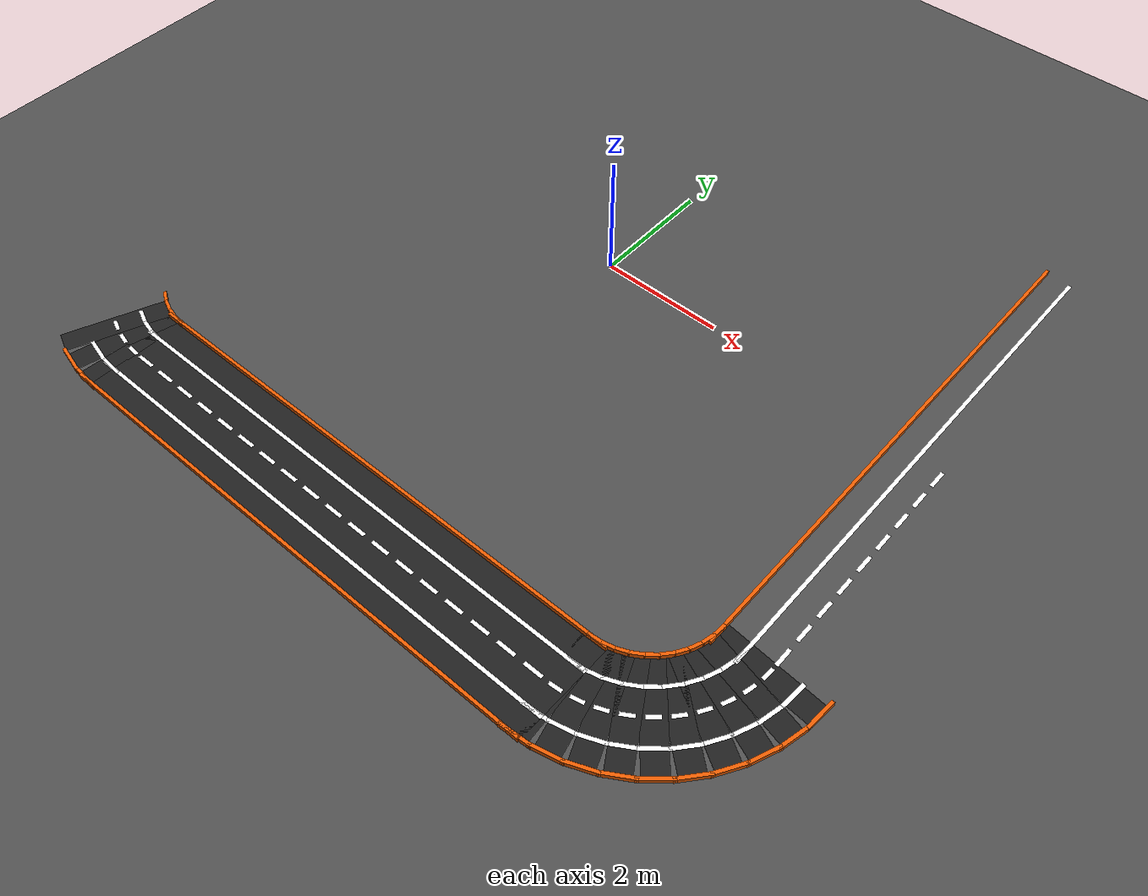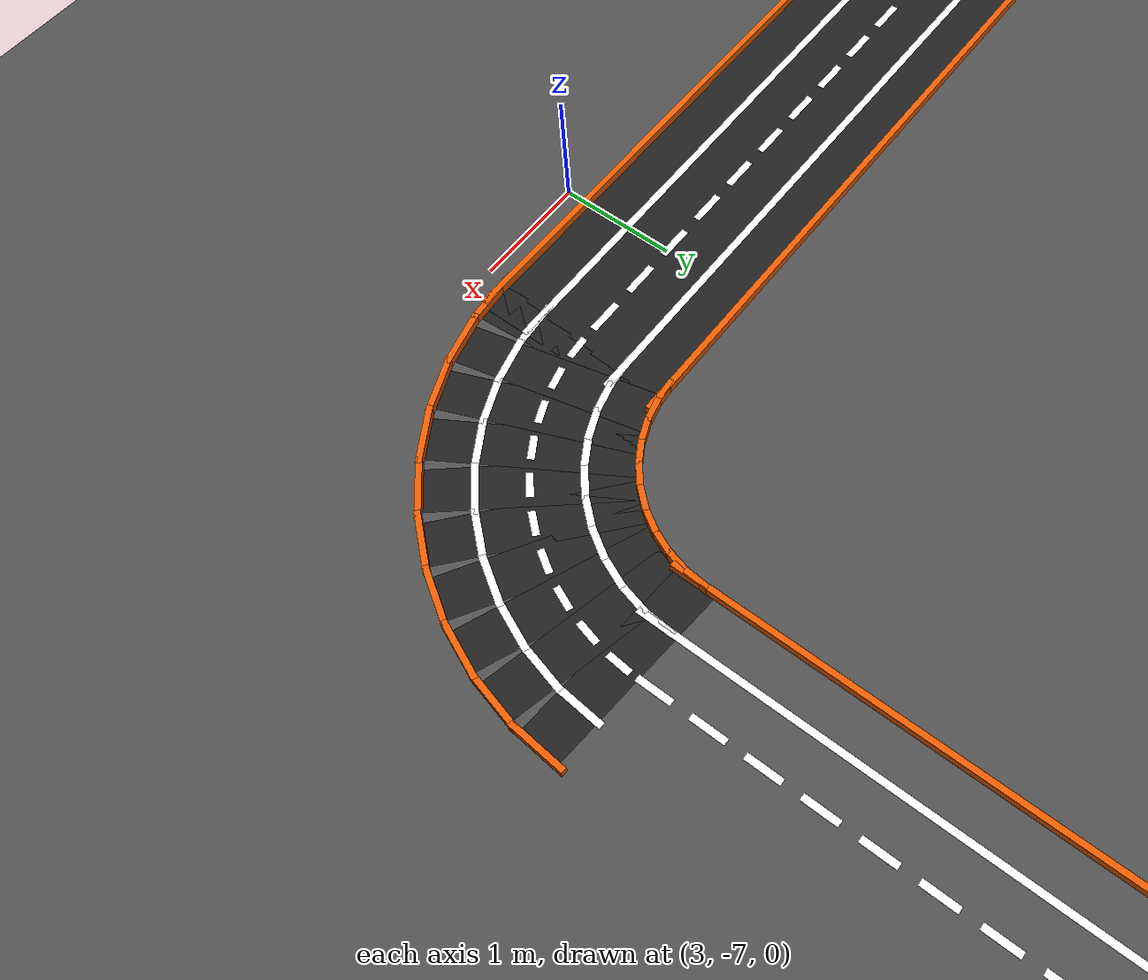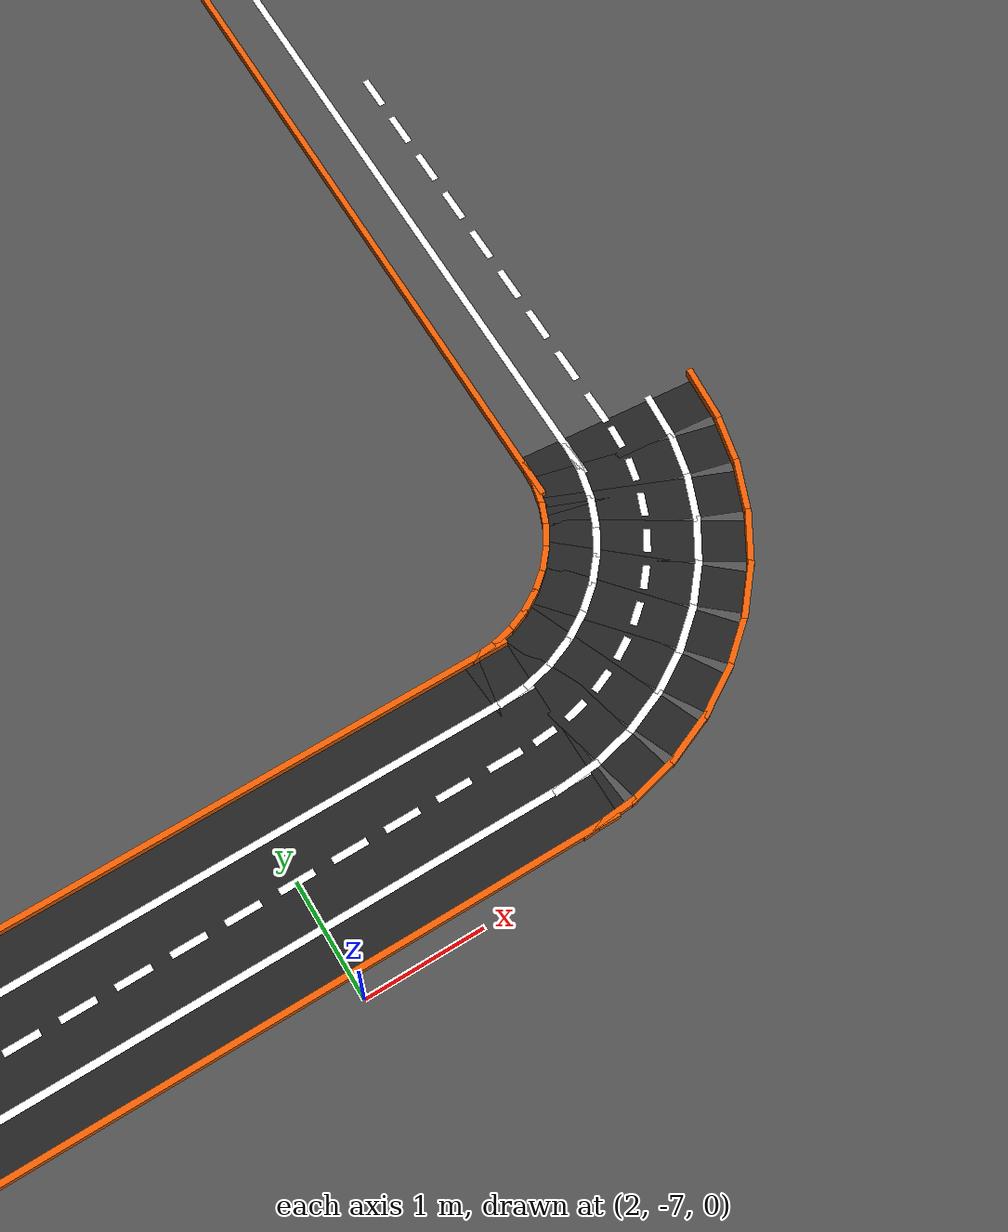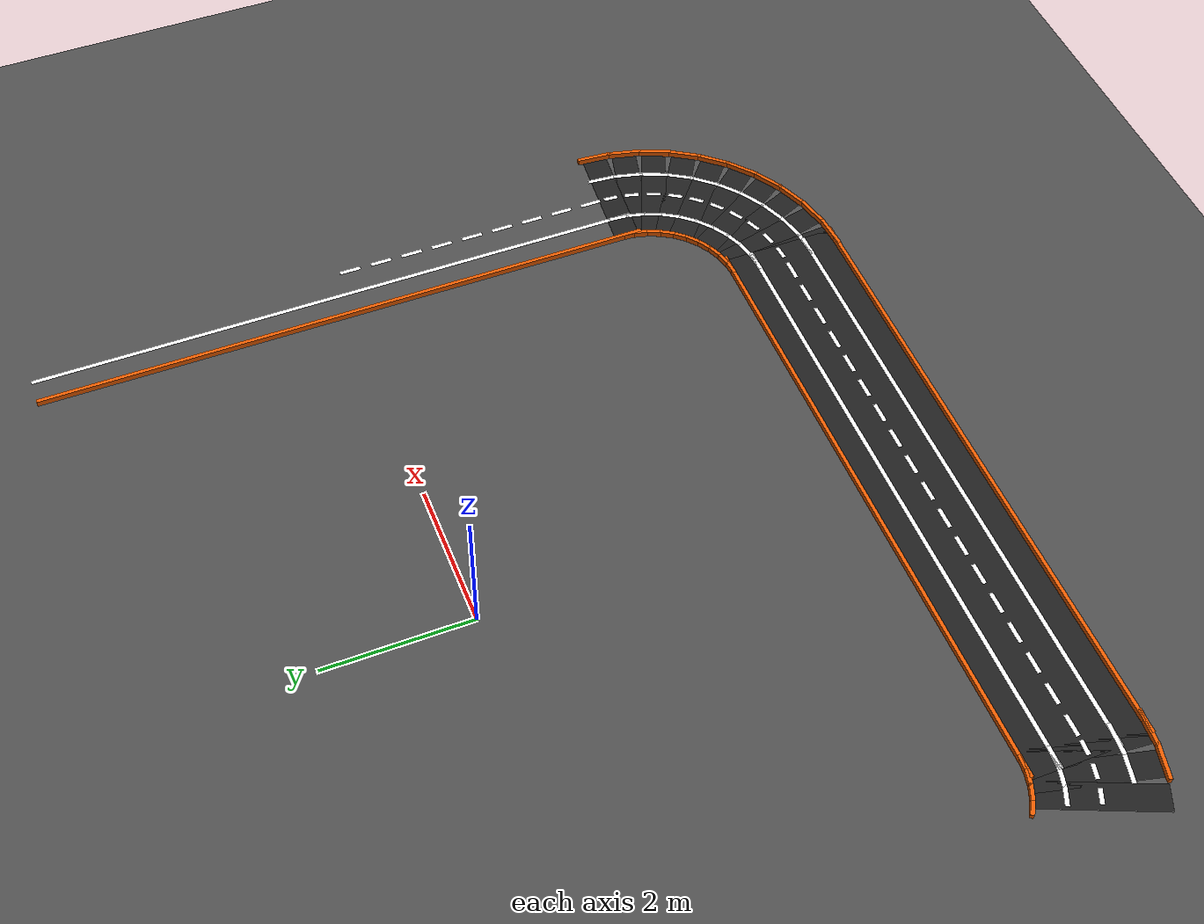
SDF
<sdf version="1.6">
 <world name="qcar_oval">
  <model name="ground_plane">
   <static>true</static>
   <link name="link">
    <collision name="collision">
     <geometry><plane><normal>0 0 1</normal><size>200 200</size></plane></geometry>
    </collision>
    <visual name="visual">
     <geometry><plane><normal>0 0 1</normal><size>200 200</size></plane></geometry>
     <material><ambient>0.3 0.3 0.3 1</ambient><diffuse>0.3 0.3 0.3 1</diffuse></material>
    </visual>
   </link>
  </model>
  <model name="m0">
   <static>true</static>
   <pose>0.0000 -6.0000 0.00100 0 0 0.00000</pose>
   <link name="l">
    <visual name="v">
     <geometry><box><size>8.6000 1.6000 0.0010</size></box></geometry>
     <material><ambient>0.12 0.12 0.12 1</ambient><diffuse>0.12 0.12 0.12 1</diffuse></material>
    </visual>
   </link>
  </model>
  <model name="m1">
   <static>true</static>
   <pose>0.0000 -5.2000 0.04000 0 0 0.00000</pose>
   <link name="l">
    <visual name="v">
     <geometry><box><size>8.6000 0.0500 0.0800</size></box></geometry>
     <material><ambient>0.9 0.35 0.0 1</ambient><diffuse>0.9 0.35 0.0 1</diffuse></material>
    </visual>
   </link>
  </model>
  <model name="m2">
   <static>true</static>
   <pose>0.0000 -6.8000 0.04000 0 0 0.00000</pose>
   <link name="l">
    <visual name="v">
     <geometry><box><size>8.6000 0.0500 0.0800</size></box></geometry>
     <material><ambient>0.9 0.35 0.0 1</ambient><diffuse>0.9 0.35 0.0 1</diffuse></material>
    </visual>
   </link>
  </model>
  <model name="m3">
   <static>true</static>
   <pose>0.0000 -5.6000 0.00200 0 0 0.00000</pose>
   <link name="l">
    <visual name="v">
     <geometry><box><size>8.6000 0.0600 0.0010</size></box></geometry>
     <material><ambient>1 1 1 1</ambient><diffuse>1 1 1 1</diffuse></material>
    </visual>
   </link>
  </model>
  <model name="m4">
   <static>true</static>
   <pose>0.0000 -6.4000 0.00200 0 0 0.00000</pose>
   <link name="l">
    <visual name="v">
     <geometry><box><size>8.6000 0.0600 0.0010</size></box></geometry>
     <material><ambient>1 1 1 1</ambient><diffuse>1 1 1 1</diffuse></material>
    </visual>
   </link>
  </model>
  <model name="m5">
   <static>true</static>
   <pose>-3.8500 -6.0000 0.00200 0 0 0.00000</pose>
   <link name="l">
    <visual name="v">
     <geometry><box><size>0.3000 0.0600 0.0010</size></box></geometry>
     <material><ambient>1 1 1 1</ambient><diffuse>1 1 1 1</diffuse></material>
    </visual>
   </link>
  </model>
  <model name="m6">
   <static>true</static>
   <pose>-3.4000 -6.0000 0.00200 0 0 0.00000</pose>
   <link name="l">
    <visual name="v">
     <geometry><box><size>0.3000 0.0600 0.0010</size></box></geometry>
     <material><ambient>1 1 1 1</ambient><diffuse>1 1 1 1</diffuse></material>
    </visual>
   </link>
  </model>
  <model name="m7">
   <static>true</static>
   <pose>-2.9500 -6.0000 0.00200 0 0 0.00000</pose>
   <link name="l">
    <visual name="v">
     <geometry><box><size>0.3000 0.0600 0.0010</size></box></geometry>
     <material><ambient>1 1 1 1</ambient><diffuse>1 1 1 1</diffuse></material>
    </visual>
   </link>
  </model>
  <model name="m8">
   <static>true</static>
   <pose>-2.5000 -6.0000 0.00200 0 0 0.00000</pose>
   <link name="l">
    <visual name="v">
     <geometry><box><size>0.3000 0.0600 0.0010</size></box></geometry>
     <material><ambient>1 1 1 1</ambient><diffuse>1 1 1 1</diffuse></material>
    </visual>
   </link>
  </model>
  <model name="m9">
   <static>true</static>
   <pose>-2.0500 -6.0000 0.00200 0 0 0.00000</pose>
   <link name="l">
    <visual name="v">
     <geometry><box><size>0.3000 0.0600 0.0010</size></box></geometry>
     <material><ambient>1 1 1 1</ambient><diffuse>1 1 1 1</diffuse></material>
    </visual>
   </link>
  </model>
  <model name="m10">
   <static>true</static>
   <pose>-1.6000 -6.0000 0.00200 0 0 0.00000</pose>
   <link name="l">
    <visual name="v">
     <geometry><box><size>0.3000 0.0600 0.0010</size></box></geometry>
     <material><ambient>1 1 1 1</ambient><diffuse>1 1 1 1</diffuse></material>
    </visual>
   </link>
  </model>
  <model name="m11">
   <static>true</static>
   <pose>-1.1500 -6.0000 0.00200 0 0 0.00000</pose>
   <link name="l">
    <visual name="v">
     <geometry><box><size>0.3000 0.0600 0.0010</size></box></geometry>
     <material><ambient>1 1 1 1</ambient><diffuse>1 1 1 1</diffuse></material>
    </visual>
   </link>
  </model>
  <model name="m12">
   <static>true</static>
   <pose>-0.7000 -6.0000 0.00200 0 0 0.00000</pose>
   <link name="l">
    <visual name="v">
     <geometry><box><size>0.3000 0.0600 0.0010</size></box></geometry>
     <material><ambient>1 1 1 1</ambient><diffuse>1 1 1 1</diffuse></material>
    </visual>
   </link>
  </model>
  <model name="m13">
   <static>true</static>
   <pose>-0.2500 -6.0000 0.00200 0 0 0.00000</pose>
   <link name="l">
    <visual name="v">
     <geometry><box><size>0.3000 0.0600 0.0010</size></box></geometry>
     <material><ambient>1 1 1 1</ambient><diffuse>1 1 1 1</diffuse></material>
    </visual>
   </link>
  </model>
  <model name="m14">
   <static>true</static>
   <pose>0.2000 -6.0000 0.00200 0 0 0.00000</pose>
   <link name="l">
    <visual name="v">
     <geometry><box><size>0.3000 0.0600 0.0010</size></box></geometry>
     <material><ambient>1 1 1 1</ambient><diffuse>1 1 1 1</diffuse></material>
    </visual>
   </link>
  </model>
  <model name="m15">
   <static>true</static>
   <pose>0.6500 -6.0000 0.00200 0 0 0.00000</pose>
   <link name="l">
    <visual name="v">
     <geometry><box><size>0.3000 0.0600 0.0010</size></box></geometry>
     <material><ambient>1 1 1 1</ambient><diffuse>1 1 1 1</diffuse></material>
    </visual>
   </link>
  </model>
  <model name="m16">
   <static>true</static>
   <pose>1.1000 -6.0000 0.00200 0 0 0.00000</pose>
   <link name="l">
    <visual name="v">
     <geometry><box><size>0.3000 0.0600 0.0010</size></box></geometry>
     <material><ambient>1 1 1 1</ambient><diffuse>1 1 1 1</diffuse></material>
    </visual>
   </link>
  </model>
  <model name="m17">
   <static>true</static>
   <pose>1.5500 -6.0000 0.00200 0 0 0.00000</pose>
   <link name="l">
    <visual name="v">
     <geometry><box><size>0.3000 0.0600 0.0010</size></box></geometry>
     <material><ambient>1 1 1 1</ambient><diffuse>1 1 1 1</diffuse></material>
    </visual>
   </link>
  </model>
  <model name="m18">
   <static>true</static>
   <pose>2.0000 -6.0000 0.00200 0 0 0.00000</pose>
   <link name="l">
    <visual name="v">
     <geometry><box><size>0.3000 0.0600 0.0010</size></box></geometry>
     <material><ambient>1 1 1 1</ambient><diffuse>1 1 1 1</diffuse></material>
    </visual>
   </link>
  </model>
  <model name="m19">
   <static>true</static>
   <pose>2.4500 -6.0000 0.00200 0 0 0.00000</pose>
   <link name="l">
    <visual name="v">
     <geometry><box><size>0.3000 0.0600 0.0010</size></box></geometry>
     <material><ambient>1 1 1 1</ambient><diffuse>1 1 1 1</diffuse></material>
    </visual>
   </link>
  </model>
  <model name="m20">
   <static>true</static>
   <pose>2.9000 -6.0000 0.00200 0 0 0.00000</pose>
   <link name="l">
    <visual name="v">
     <geometry><box><size>0.3000 0.0600 0.0010</size></box></geometry>
     <material><ambient>1 1 1 1</ambient><diffuse>1 1 1 1</diffuse></material>
    </visual>
   </link>
  </model>
  <model name="m21">
   <static>true</static>
   <pose>3.3500 -6.0000 0.00200 0 0 0.00000</pose>
   <link name="l">
    <visual name="v">
     <geometry><box><size>0.3000 0.0600 0.0010</size></box></geometry>
     <material><ambient>1 1 1 1</ambient><diffuse>1 1 1 1</diffuse></material>
    </visual>
   </link>
  </model>
  <model name="m22">
   <static>true</static>
   <pose>3.8000 -6.0000 0.00200 0 0 0.00000</pose>
   <link name="l">
    <visual name="v">
     <geometry><box><size>0.3000 0.0600 0.0010</size></box></geometry>
     <material><ambient>1 1 1 1</ambient><diffuse>1 1 1 1</diffuse></material>
    </visual>
   </link>
  </model>
  <model name="m47">
   <static>true</static>
   <pose>5.2000 0.0000 0.04000 0 0 0.00000</pose>
   <link name="l">
    <visual name="v">
     <geometry><box><size>0.0500 8.6000 0.0800</size></box></geometry>
     <material><ambient>0.9 0.35 0.0 1</ambient><diffuse>0.9 0.35 0.0 1</diffuse></material>
    </visual>
   </link>
  </model>
  <model name="m49">
   <static>true</static>
   <pose>5.6000 0.0000 0.00200 0 0 0.00000</pose>
   <link name="l">
    <visual name="v">
     <geometry><box><size>0.0600 8.6000 0.0010</size></box></geometry>
     <material><ambient>1 1 1 1</ambient><diffuse>1 1 1 1</diffuse></material>
    </visual>
   </link>
  </model>
  <model name="m51">
   <static>true</static>
   <pose>6.0000 -3.8500 0.00200 0 0 0.00000</pose>
   <link name="l">
    <visual name="v">
     <geometry><box><size>0.0600 0.3000 0.0010</size></box></geometry>
     <material><ambient>1 1 1 1</ambient><diffuse>1 1 1 1</diffuse></material>
    </visual>
   </link>
  </model>
  <model name="m52">
   <static>true</static>
   <pose>6.0000 -3.4000 0.00200 0 0 0.00000</pose>
   <link name="l">
    <visual name="v">
     <geometry><box><size>0.0600 0.3000 0.0010</size></box></geometry>
     <material><ambient>1 1 1 1</ambient><diffuse>1 1 1 1</diffuse></material>
    </visual>
   </link>
  </model>
  <model name="m53">
   <static>true</static>
   <pose>6.0000 -2.9500 0.00200 0 0 0.00000</pose>
   <link name="l">
    <visual name="v">
     <geometry><box><size>0.0600 0.3000 0.0010</size></box></geometry>
     <material><ambient>1 1 1 1</ambient><diffuse>1 1 1 1</diffuse></material>
    </visual>
   </link>
  </model>
  <model name="m54">
   <static>true</static>
   <pose>6.0000 -2.5000 0.00200 0 0 0.00000</pose>
   <link name="l">
    <visual name="v">
     <geometry><box><size>0.0600 0.3000 0.0010</size></box></geometry>
     <material><ambient>1 1 1 1</ambient><diffuse>1 1 1 1</diffuse></material>
    </visual>
   </link>
  </model>
  <model name="m55">
   <static>true</static>
   <pose>6.0000 -2.0500 0.00200 0 0 0.00000</pose>
   <link name="l">
    <visual name="v">
     <geometry><box><size>0.0600 0.3000 0.0010</size></box></geometry>
     <material><ambient>1 1 1 1</ambient><diffuse>1 1 1 1</diffuse></material>
    </visual>
   </link>
  </model>
  <model name="m56">
   <static>true</static>
   <pose>6.0000 -1.6000 0.00200 0 0 0.00000</pose>
   <link name="l">
    <visual name="v">
     <geometry><box><size>0.0600 0.3000 0.0010</size></box></geometry>
     <material><ambient>1 1 1 1</ambient><diffuse>1 1 1 1</diffuse></material>
    </visual>
   </link>
  </model>
  <model name="m57">
   <static>true</static>
   <pose>6.0000 -1.1500 0.00200 0 0 0.00000</pose>
   <link name="l">
    <visual name="v">
     <geometry><box><size>0.0600 0.3000 0.0010</size></box></geometry>
     <material><ambient>1 1 1 1</ambient><diffuse>1 1 1 1</diffuse></material>
    </visual>
   </link>
  </model>
  <model name="m58">
   <static>true</static>
   <pose>6.0000 -0.7000 0.00200 0 0 0.00000</pose>
   <link name="l">
    <visual name="v">
     <geometry><box><size>0.0600 0.3000 0.0010</size></box></geometry>
     <material><ambient>1 1 1 1</ambient><diffuse>1 1 1 1</diffuse></material>
    </visual>
   </link>
  </model>
  <model name="m59">
   <static>true</static>
   <pose>6.0000 -0.2500 0.00200 0 0 0.00000</pose>
   <link name="l">
    <visual name="v">
     <geometry><box><size>0.0600 0.3000 0.0010</size></box></geometry>
     <material><ambient>1 1 1 1</ambient><diffuse>1 1 1 1</diffuse></material>
    </visual>
   </link>
  </model>
  <model name="m92">
   <static>true</static>
   <pose>4.1569 -5.9938 0.00100 0 0 0.07854</pose>
   <link name="l">
    <visual name="v">
     <geometry><box><size>0.3519 1.6000 0.0010</size></box></geometry>
     <material><ambient>0.12 0.12 0.12 1</ambient><diffuse>0.12 0.12 0.12 1</diffuse></material>
    </visual>
   </link>
  </model>
  <model name="m93">
   <static>true</static>
   <pose>4.0942 -5.1963 0.04000 0 0 0.07854</pose>
   <link name="l">
    <visual name="v">
     <geometry><box><size>0.2111 0.0500 0.0800</size></box></geometry>
     <material><ambient>0.9 0.35 0.0 1</ambient><diffuse>0.9 0.35 0.0 1</diffuse></material>
    </visual>
   </link>
  </model>
  <model name="m94">
   <static>true</static>
   <pose>4.2197 -6.7914 0.04000 0 0 0.07854</pose>
   <link name="l">
    <visual name="v">
     <geometry><box><size>0.4926 0.0500 0.0800</size></box></geometry>
     <material><ambient>0.9 0.35 0.0 1</ambient><diffuse>0.9 0.35 0.0 1</diffuse></material>
    </visual>
   </link>
  </model>
  <model name="m95">
   <static>true</static>
   <pose>4.1255 -5.5951 0.00200 0 0 0.07854</pose>
   <link name="l">
    <visual name="v">
     <geometry><box><size>0.2815 0.0600 0.0010</size></box></geometry>
     <material><ambient>1 1 1 1</ambient><diffuse>1 1 1 1</diffuse></material>
    </visual>
   </link>
  </model>
  <model name="m96">
   <static>true</static>
   <pose>4.1883 -6.3926 0.00200 0 0 0.07854</pose>
   <link name="l">
    <visual name="v">
     <geometry><box><size>0.4222 0.0600 0.0010</size></box></geometry>
     <material><ambient>1 1 1 1</ambient><diffuse>1 1 1 1</diffuse></material>
    </visual>
   </link>
  </model>
  <model name="m97">
   <static>true</static>
   <pose>4.1569 -5.9938 0.00200 0 0 0.07854</pose>
   <link name="l">
    <visual name="v">
     <geometry><box><size>0.2042 0.0600 0.0010</size></box></geometry>
     <material><ambient>1 1 1 1</ambient><diffuse>1 1 1 1</diffuse></material>
    </visual>
   </link>
  </model>
  <model name="m98">
   <static>true</static>
   <pose>4.4669 -5.9447 0.00100 0 0 0.23562</pose>
   <link name="l">
    <visual name="v">
     <geometry><box><size>0.3519 1.6000 0.0010</size></box></geometry>
     <material><ambient>0.12 0.12 0.12 1</ambient><diffuse>0.12 0.12 0.12 1</diffuse></material>
    </visual>
   </link>
  </model>
  <model name="m99">
   <static>true</static>
   <pose>4.2801 -5.1668 0.04000 0 0 0.23562</pose>
   <link name="l">
    <visual name="v">
     <geometry><box><size>0.2111 0.0500 0.0800</size></box></geometry>
     <material><ambient>0.9 0.35 0.0 1</ambient><diffuse>0.9 0.35 0.0 1</diffuse></material>
    </visual>
   </link>
  </model>
  <model name="m100">
   <static>true</static>
   <pose>4.6536 -6.7226 0.04000 0 0 0.23562</pose>
   <link name="l">
    <visual name="v">
     <geometry><box><size>0.4926 0.0500 0.0800</size></box></geometry>
     <material><ambient>0.9 0.35 0.0 1</ambient><diffuse>0.9 0.35 0.0 1</diffuse></material>
    </visual>
   </link>
  </model>
  <model name="m101">
   <static>true</static>
   <pose>4.3735 -5.5558 0.00200 0 0 0.23562</pose>
   <link name="l">
    <visual name="v">
     <geometry><box><size>0.2815 0.0600 0.0010</size></box></geometry>
     <material><ambient>1 1 1 1</ambient><diffuse>1 1 1 1</diffuse></material>
    </visual>
   </link>
  </model>
  <model name="m102">
   <static>true</static>
   <pose>4.5603 -6.3337 0.00200 0 0 0.23562</pose>
   <link name="l">
    <visual name="v">
     <geometry><box><size>0.4222 0.0600 0.0010</size></box></geometry>
     <material><ambient>1 1 1 1</ambient><diffuse>1 1 1 1</diffuse></material>
    </visual>
   </link>
  </model>
  <model name="m103">
   <static>true</static>
   <pose>4.4669 -5.9447 0.00200 0 0 0.23562</pose>
   <link name="l">
    <visual name="v">
     <geometry><box><size>0.2042 0.0600 0.0010</size></box></geometry>
     <material><ambient>1 1 1 1</ambient><diffuse>1 1 1 1</diffuse></material>
    </visual>
   </link>
  </model>
  <model name="m104">
   <static>true</static>
   <pose>4.7654 -5.8478 0.00100 0 0 0.39270</pose>
   <link name="l">
    <visual name="v">
     <geometry><box><size>0.3519 1.6000 0.0010</size></box></geometry>
     <material><ambient>0.12 0.12 0.12 1</ambient><diffuse>0.12 0.12 0.12 1</diffuse></material>
    </visual>
   </link>
  </model>
  <model name="m105">
   <static>true</static>
   <pose>4.4592 -5.1087 0.04000 0 0 0.39270</pose>
   <link name="l">
    <visual name="v">
     <geometry><box><size>0.2111 0.0500 0.0800</size></box></geometry>
     <material><ambient>0.9 0.35 0.0 1</ambient><diffuse>0.9 0.35 0.0 1</diffuse></material>
    </visual>
   </link>
  </model>
  <model name="m106">
   <static>true</static>
   <pose>5.0715 -6.5869 0.04000 0 0 0.39270</pose>
   <link name="l">
    <visual name="v">
     <geometry><box><size>0.4926 0.0500 0.0800</size></box></geometry>
     <material><ambient>0.9 0.35 0.0 1</ambient><diffuse>0.9 0.35 0.0 1</diffuse></material>
    </visual>
   </link>
  </model>
  <model name="m107">
   <static>true</static>
   <pose>4.6123 -5.4782 0.00200 0 0 0.39270</pose>
   <link name="l">
    <visual name="v">
     <geometry><box><size>0.2815 0.0600 0.0010</size></box></geometry>
     <material><ambient>1 1 1 1</ambient><diffuse>1 1 1 1</diffuse></material>
    </visual>
   </link>
  </model>
  <model name="m108">
   <static>true</static>
   <pose>4.9184 -6.2173 0.00200 0 0 0.39270</pose>
   <link name="l">
    <visual name="v">
     <geometry><box><size>0.4222 0.0600 0.0010</size></box></geometry>
     <material><ambient>1 1 1 1</ambient><diffuse>1 1 1 1</diffuse></material>
    </visual>
   </link>
  </model>
  <model name="m109">
   <static>true</static>
   <pose>4.7654 -5.8478 0.00200 0 0 0.39270</pose>
   <link name="l">
    <visual name="v">
     <geometry><box><size>0.2042 0.0600 0.0010</size></box></geometry>
     <material><ambient>1 1 1 1</ambient><diffuse>1 1 1 1</diffuse></material>
    </visual>
   </link>
  </model>
  <model name="m110">
   <static>true</static>
   <pose>5.0450 -5.7053 0.00100 0 0 0.54978</pose>
   <link name="l">
    <visual name="v">
     <geometry><box><size>0.3519 1.6000 0.0010</size></box></geometry>
     <material><ambient>0.12 0.12 0.12 1</ambient><diffuse>0.12 0.12 0.12 1</diffuse></material>
    </visual>
   </link>
  </model>
  <model name="m111">
   <static>true</static>
   <pose>4.6270 -5.0232 0.04000 0 0 0.54978</pose>
   <link name="l">
    <visual name="v">
     <geometry><box><size>0.2111 0.0500 0.0800</size></box></geometry>
     <material><ambient>0.9 0.35 0.0 1</ambient><diffuse>0.9 0.35 0.0 1</diffuse></material>
    </visual>
   </link>
  </model>
  <model name="m112">
   <static>true</static>
   <pose>5.4630 -6.3874 0.04000 0 0 0.54978</pose>
   <link name="l">
    <visual name="v">
     <geometry><box><size>0.4926 0.0500 0.0800</size></box></geometry>
     <material><ambient>0.9 0.35 0.0 1</ambient><diffuse>0.9 0.35 0.0 1</diffuse></material>
    </visual>
   </link>
  </model>
  <model name="m113">
   <static>true</static>
   <pose>4.8360 -5.3642 0.00200 0 0 0.54978</pose>
   <link name="l">
    <visual name="v">
     <geometry><box><size>0.2815 0.0600 0.0010</size></box></geometry>
     <material><ambient>1 1 1 1</ambient><diffuse>1 1 1 1</diffuse></material>
    </visual>
   </link>
  </model>
  <model name="m114">
   <static>true</static>
   <pose>5.2540 -6.0463 0.00200 0 0 0.54978</pose>
   <link name="l">
    <visual name="v">
     <geometry><box><size>0.4222 0.0600 0.0010</size></box></geometry>
     <material><ambient>1 1 1 1</ambient><diffuse>1 1 1 1</diffuse></material>
    </visual>
   </link>
  </model>
  <model name="m115">
   <static>true</static>
   <pose>5.0450 -5.7053 0.00200 0 0 0.54978</pose>
   <link name="l">
    <visual name="v">
     <geometry><box><size>0.2042 0.0600 0.0010</size></box></geometry>
     <material><ambient>1 1 1 1</ambient><diffuse>1 1 1 1</diffuse></material>
    </visual>
   </link>
  </model>
  <model name="m116">
   <static>true</static>
   <pose>5.2989 -5.5208 0.00100 0 0 0.70686</pose>
   <link name="l">
    <visual name="v">
     <geometry><box><size>0.3519 1.6000 0.0010</size></box></geometry>
     <material><ambient>0.12 0.12 0.12 1</ambient><diffuse>0.12 0.12 0.12 1</diffuse></material>
    </visual>
   </link>
  </model>
  <model name="m117">
   <static>true</static>
   <pose>4.7793 -4.9125 0.04000 0 0 0.70686</pose>
   <link name="l">
    <visual name="v">
     <geometry><box><size>0.2111 0.0500 0.0800</size></box></geometry>
     <material><ambient>0.9 0.35 0.0 1</ambient><diffuse>0.9 0.35 0.0 1</diffuse></material>
    </visual>
   </link>
  </model>
  <model name="m118">
   <static>true</static>
   <pose>5.8185 -6.1291 0.04000 0 0 0.70686</pose>
   <link name="l">
    <visual name="v">
     <geometry><box><size>0.4926 0.0500 0.0800</size></box></geometry>
     <material><ambient>0.9 0.35 0.0 1</ambient><diffuse>0.9 0.35 0.0 1</diffuse></material>
    </visual>
   </link>
  </model>
  <model name="m119">
   <static>true</static>
   <pose>5.0391 -5.2166 0.00200 0 0 0.70686</pose>
   <link name="l">
    <visual name="v">
     <geometry><box><size>0.2815 0.0600 0.0010</size></box></geometry>
     <material><ambient>1 1 1 1</ambient><diffuse>1 1 1 1</diffuse></material>
    </visual>
   </link>
  </model>
  <model name="m120">
   <static>true</static>
   <pose>5.5587 -5.8250 0.00200 0 0 0.70686</pose>
   <link name="l">
    <visual name="v">
     <geometry><box><size>0.4222 0.0600 0.0010</size></box></geometry>
     <material><ambient>1 1 1 1</ambient><diffuse>1 1 1 1</diffuse></material>
    </visual>
   </link>
  </model>
  <model name="m121">
   <static>true</static>
   <pose>5.2989 -5.5208 0.00200 0 0 0.70686</pose>
   <link name="l">
    <visual name="v">
     <geometry><box><size>0.2042 0.0600 0.0010</size></box></geometry>
     <material><ambient>1 1 1 1</ambient><diffuse>1 1 1 1</diffuse></material>
    </visual>
   </link>
  </model>
  <model name="m122">
   <static>true</static>
   <pose>5.5208 -5.2989 0.00100 0 0 0.86394</pose>
   <link name="l">
    <visual name="v">
     <geometry><box><size>0.3519 1.6000 0.0010</size></box></geometry>
     <material><ambient>0.12 0.12 0.12 1</ambient><diffuse>0.12 0.12 0.12 1</diffuse></material>
    </visual>
   </link>
  </model>
  <model name="m123">
   <static>true</static>
   <pose>4.9125 -4.7793 0.04000 0 0 0.86394</pose>
   <link name="l">
    <visual name="v">
     <geometry><box><size>0.2111 0.0500 0.0800</size></box></geometry>
     <material><ambient>0.9 0.35 0.0 1</ambient><diffuse>0.9 0.35 0.0 1</diffuse></material>
    </visual>
   </link>
  </model>
  <model name="m124">
   <static>true</static>
   <pose>6.1291 -5.8185 0.04000 0 0 0.86394</pose>
   <link name="l">
    <visual name="v">
     <geometry><box><size>0.4926 0.0500 0.0800</size></box></geometry>
     <material><ambient>0.9 0.35 0.0 1</ambient><diffuse>0.9 0.35 0.0 1</diffuse></material>
    </visual>
   </link>
  </model>
  <model name="m125">
   <static>true</static>
   <pose>5.2166 -5.0391 0.00200 0 0 0.86394</pose>
   <link name="l">
    <visual name="v">
     <geometry><box><size>0.2815 0.0600 0.0010</size></box></geometry>
     <material><ambient>1 1 1 1</ambient><diffuse>1 1 1 1</diffuse></material>
    </visual>
   </link>
  </model>
  <model name="m126">
   <static>true</static>
   <pose>5.8250 -5.5587 0.00200 0 0 0.86394</pose>
   <link name="l">
    <visual name="v">
     <geometry><box><size>0.4222 0.0600 0.0010</size></box></geometry>
     <material><ambient>1 1 1 1</ambient><diffuse>1 1 1 1</diffuse></material>
    </visual>
   </link>
  </model>
  <model name="m127">
   <static>true</static>
   <pose>5.5208 -5.2989 0.00200 0 0 0.86394</pose>
   <link name="l">
    <visual name="v">
     <geometry><box><size>0.2042 0.0600 0.0010</size></box></geometry>
     <material><ambient>1 1 1 1</ambient><diffuse>1 1 1 1</diffuse></material>
    </visual>
   </link>
  </model>
  <model name="m128">
   <static>true</static>
   <pose>5.7053 -5.0450 0.00100 0 0 1.02102</pose>
   <link name="l">
    <visual name="v">
     <geometry><box><size>0.3519 1.6000 0.0010</size></box></geometry>
     <material><ambient>0.12 0.12 0.12 1</ambient><diffuse>0.12 0.12 0.12 1</diffuse></material>
    </visual>
   </link>
  </model>
  <model name="m129">
   <static>true</static>
   <pose>5.0232 -4.6270 0.04000 0 0 1.02102</pose>
   <link name="l">
    <visual name="v">
     <geometry><box><size>0.2111 0.0500 0.0800</size></box></geometry>
     <material><ambient>0.9 0.35 0.0 1</ambient><diffuse>0.9 0.35 0.0 1</diffuse></material>
    </visual>
   </link>
  </model>
  <model name="m130">
   <static>true</static>
   <pose>6.3874 -5.4630 0.04000 0 0 1.02102</pose>
   <link name="l">
    <visual name="v">
     <geometry><box><size>0.4926 0.0500 0.0800</size></box></geometry>
     <material><ambient>0.9 0.35 0.0 1</ambient><diffuse>0.9 0.35 0.0 1</diffuse></material>
    </visual>
   </link>
  </model>
  <model name="m131">
   <static>true</static>
   <pose>5.3642 -4.8360 0.00200 0 0 1.02102</pose>
   <link name="l">
    <visual name="v">
     <geometry><box><size>0.2815 0.0600 0.0010</size></box></geometry>
     <material><ambient>1 1 1 1</ambient><diffuse>1 1 1 1</diffuse></material>
    </visual>
   </link>
  </model>
  <model name="m132">
   <static>true</static>
   <pose>6.0463 -5.2540 0.00200 0 0 1.02102</pose>
   <link name="l">
    <visual name="v">
     <geometry><box><size>0.4222 0.0600 0.0010</size></box></geometry>
     <material><ambient>1 1 1 1</ambient><diffuse>1 1 1 1</diffuse></material>
    </visual>
   </link>
  </model>
  <model name="m133">
   <static>true</static>
   <pose>5.7053 -5.0450 0.00200 0 0 1.02102</pose>
   <link name="l">
    <visual name="v">
     <geometry><box><size>0.2042 0.0600 0.0010</size></box></geometry>
     <material><ambient>1 1 1 1</ambient><diffuse>1 1 1 1</diffuse></material>
    </visual>
   </link>
  </model>
  <model name="m134">
   <static>true</static>
   <pose>5.8478 -4.7654 0.00100 0 0 1.17810</pose>
   <link name="l">
    <visual name="v">
     <geometry><box><size>0.3519 1.6000 0.0010</size></box></geometry>
     <material><ambient>0.12 0.12 0.12 1</ambient><diffuse>0.12 0.12 0.12 1</diffuse></material>
    </visual>
   </link>
  </model>
  <model name="m135">
   <static>true</static>
   <pose>5.1087 -4.4592 0.04000 0 0 1.17810</pose>
   <link name="l">
    <visual name="v">
     <geometry><box><size>0.2111 0.0500 0.0800</size></box></geometry>
     <material><ambient>0.9 0.35 0.0 1</ambient><diffuse>0.9 0.35 0.0 1</diffuse></material>
    </visual>
   </link>
  </model>
  <model name="m136">
   <static>true</static>
   <pose>6.5869 -5.0715 0.04000 0 0 1.17810</pose>
   <link name="l">
    <visual name="v">
     <geometry><box><size>0.4926 0.0500 0.0800</size></box></geometry>
     <material><ambient>0.9 0.35 0.0 1</ambient><diffuse>0.9 0.35 0.0 1</diffuse></material>
    </visual>
   </link>
  </model>
  <model name="m137">
   <static>true</static>
   <pose>5.4782 -4.6123 0.00200 0 0 1.17810</pose>
   <link name="l">
    <visual name="v">
     <geometry><box><size>0.2815 0.0600 0.0010</size></box></geometry>
     <material><ambient>1 1 1 1</ambient><diffuse>1 1 1 1</diffuse></material>
    </visual>
   </link>
  </model>
  <model name="m138">
   <static>true</static>
   <pose>6.2173 -4.9184 0.00200 0 0 1.17810</pose>
   <link name="l">
    <visual name="v">
     <geometry><box><size>0.4222 0.0600 0.0010</size></box></geometry>
     <material><ambient>1 1 1 1</ambient><diffuse>1 1 1 1</diffuse></material>
    </visual>
   </link>
  </model>
  <model name="m139">
   <static>true</static>
   <pose>5.8478 -4.7654 0.00200 0 0 1.17810</pose>
   <link name="l">
    <visual name="v">
     <geometry><box><size>0.2042 0.0600 0.0010</size></box></geometry>
     <material><ambient>1 1 1 1</ambient><diffuse>1 1 1 1</diffuse></material>
    </visual>
   </link>
  </model>
  <model name="m140">
   <static>true</static>
   <pose>5.9447 -4.4669 0.00100 0 0 1.33518</pose>
   <link name="l">
    <visual name="v">
     <geometry><box><size>0.3519 1.6000 0.0010</size></box></geometry>
     <material><ambient>0.12 0.12 0.12 1</ambient><diffuse>0.12 0.12 0.12 1</diffuse></material>
    </visual>
   </link>
  </model>
  <model name="m141">
   <static>true</static>
   <pose>5.1668 -4.2801 0.04000 0 0 1.33518</pose>
   <link name="l">
    <visual name="v">
     <geometry><box><size>0.2111 0.0500 0.0800</size></box></geometry>
     <material><ambient>0.9 0.35 0.0 1</ambient><diffuse>0.9 0.35 0.0 1</diffuse></material>
    </visual>
   </link>
  </model>
  <model name="m142">
   <static>true</static>
   <pose>6.7226 -4.6536 0.04000 0 0 1.33518</pose>
   <link name="l">
    <visual name="v">
     <geometry><box><size>0.4926 0.0500 0.0800</size></box></geometry>
     <material><ambient>0.9 0.35 0.0 1</ambient><diffuse>0.9 0.35 0.0 1</diffuse></material>
    </visual>
   </link>
  </model>
  <model name="m143">
   <static>true</static>
   <pose>5.5558 -4.3735 0.00200 0 0 1.33518</pose>
   <link name="l">
    <visual name="v">
     <geometry><box><size>0.2815 0.0600 0.0010</size></box></geometry>
     <material><ambient>1 1 1 1</ambient><diffuse>1 1 1 1</diffuse></material>
    </visual>
   </link>
  </model>
  <model name="m144">
   <static>true</static>
   <pose>6.3337 -4.5603 0.00200 0 0 1.33518</pose>
   <link name="l">
    <visual name="v">
     <geometry><box><size>0.4222 0.0600 0.0010</size></box></geometry>
     <material><ambient>1 1 1 1</ambient><diffuse>1 1 1 1</diffuse></material>
    </visual>
   </link>
  </model>
  <model name="m145">
   <static>true</static>
   <pose>5.9447 -4.4669 0.00200 0 0 1.33518</pose>
   <link name="l">
    <visual name="v">
     <geometry><box><size>0.2042 0.0600 0.0010</size></box></geometry>
     <material><ambient>1 1 1 1</ambient><diffuse>1 1 1 1</diffuse></material>
    </visual>
   </link>
  </model>
  <model name="m146">
   <static>true</static>
   <pose>5.9938 -4.1569 0.00100 0 0 1.49226</pose>
   <link name="l">
    <visual name="v">
     <geometry><box><size>0.3519 1.6000 0.0010</size></box></geometry>
     <material><ambient>0.12 0.12 0.12 1</ambient><diffuse>0.12 0.12 0.12 1</diffuse></material>
    </visual>
   </link>
  </model>
  <model name="m147">
   <static>true</static>
   <pose>5.1963 -4.0942 0.04000 0 0 1.49226</pose>
   <link name="l">
    <visual name="v">
     <geometry><box><size>0.2111 0.0500 0.0800</size></box></geometry>
     <material><ambient>0.9 0.35 0.0 1</ambient><diffuse>0.9 0.35 0.0 1</diffuse></material>
    </visual>
   </link>
  </model>
  <model name="m148">
   <static>true</static>
   <pose>6.7914 -4.2197 0.04000 0 0 1.49226</pose>
   <link name="l">
    <visual name="v">
     <geometry><box><size>0.4926 0.0500 0.0800</size></box></geometry>
     <material><ambient>0.9 0.35 0.0 1</ambient><diffuse>0.9 0.35 0.0 1</diffuse></material>
    </visual>
   </link>
  </model>
  <model name="m149">
   <static>true</static>
   <pose>5.5951 -4.1255 0.00200 0 0 1.49226</pose>
   <link name="l">
    <visual name="v">
     <geometry><box><size>0.2815 0.0600 0.0010</size></box></geometry>
     <material><ambient>1 1 1 1</ambient><diffuse>1 1 1 1</diffuse></material>
    </visual>
   </link>
  </model>
  <model name="m150">
   <static>true</static>
   <pose>6.3926 -4.1883 0.00200 0 0 1.49226</pose>
   <link name="l">
    <visual name="v">
     <geometry><box><size>0.4222 0.0600 0.0010</size></box></geometry>
     <material><ambient>1 1 1 1</ambient><diffuse>1 1 1 1</diffuse></material>
    </visual>
   </link>
  </model>
  <model name="m151">
   <static>true</static>
   <pose>5.9938 -4.1569 0.00200 0 0 1.49226</pose>
   <link name="l">
    <visual name="v">
     <geometry><box><size>0.2042 0.0600 0.0010</size></box></geometry>
     <material><ambient>1 1 1 1</ambient><diffuse>1 1 1 1</diffuse></material>
    </visual>
   </link>
  </model>
  <model name="m309">
   <static>true</static>
   <pose>-4.6270 -5.0232 0.04000 0 0 5.73341</pose>
   <link name="l">
    <visual name="v">
     <geometry><box><size>0.2111 0.0500 0.0800</size></box></geometry>
     <material><ambient>0.9 0.35 0.0 1</ambient><diffuse>0.9 0.35 0.0 1</diffuse></material>
    </visual>
   </link>
  </model>
  <model name="m314">
   <static>true</static>
   <pose>-4.7654 -5.8478 0.00100 0 0 5.89049</pose>
   <link name="l">
    <visual name="v">
     <geometry><box><size>0.3519 1.6000 0.0010</size></box></geometry>
     <material><ambient>0.12 0.12 0.12 1</ambient><diffuse>0.12 0.12 0.12 1</diffuse></material>
    </visual>
   </link>
  </model>
  <model name="m315">
   <static>true</static>
   <pose>-4.4592 -5.1087 0.04000 0 0 5.89049</pose>
   <link name="l">
    <visual name="v">
     <geometry><box><size>0.2111 0.0500 0.0800</size></box></geometry>
     <material><ambient>0.9 0.35 0.0 1</ambient><diffuse>0.9 0.35 0.0 1</diffuse></material>
    </visual>
   </link>
  </model>
  <model name="m317">
   <static>true</static>
   <pose>-4.6123 -5.4782 0.00200 0 0 5.89049</pose>
   <link name="l">
    <visual name="v">
     <geometry><box><size>0.2815 0.0600 0.0010</size></box></geometry>
     <material><ambient>1 1 1 1</ambient><diffuse>1 1 1 1</diffuse></material>
    </visual>
   </link>
  </model>
  <model name="m319">
   <static>true</static>
   <pose>-4.7654 -5.8478 0.00200 0 0 5.89049</pose>
   <link name="l">
    <visual name="v">
     <geometry><box><size>0.2042 0.0600 0.0010</size></box></geometry>
     <material><ambient>1 1 1 1</ambient><diffuse>1 1 1 1</diffuse></material>
    </visual>
   </link>
  </model>
  <model name="m320">
   <static>true</static>
   <pose>-4.4669 -5.9447 0.00100 0 0 6.04757</pose>
   <link name="l">
    <visual name="v">
     <geometry><box><size>0.3519 1.6000 0.0010</size></box></geometry>
     <material><ambient>0.12 0.12 0.12 1</ambient><diffuse>0.12 0.12 0.12 1</diffuse></material>
    </visual>
   </link>
  </model>
  <model name="m321">
   <static>true</static>
   <pose>-4.2801 -5.1668 0.04000 0 0 6.04757</pose>
   <link name="l">
    <visual name="v">
     <geometry><box><size>0.2111 0.0500 0.0800</size></box></geometry>
     <material><ambient>0.9 0.35 0.0 1</ambient><diffuse>0.9 0.35 0.0 1</diffuse></material>
    </visual>
   </link>
  </model>
  <model name="m322">
   <static>true</static>
   <pose>-4.6536 -6.7226 0.04000 0 0 6.04757</pose>
   <link name="l">
    <visual name="v">
     <geometry><box><size>0.4926 0.0500 0.0800</size></box></geometry>
     <material><ambient>0.9 0.35 0.0 1</ambient><diffuse>0.9 0.35 0.0 1</diffuse></material>
    </visual>
   </link>
  </model>
  <model name="m323">
   <static>true</static>
   <pose>-4.3735 -5.5558 0.00200 0 0 6.04757</pose>
   <link name="l">
    <visual name="v">
     <geometry><box><size>0.2815 0.0600 0.0010</size></box></geometry>
     <material><ambient>1 1 1 1</ambient><diffuse>1 1 1 1</diffuse></material>
    </visual>
   </link>
  </model>
  <model name="m324">
   <static>true</static>
   <pose>-4.5603 -6.3337 0.00200 0 0 6.04757</pose>
   <link name="l">
    <visual name="v">
     <geometry><box><size>0.4222 0.0600 0.0010</size></box></geometry>
     <material><ambient>1 1 1 1</ambient><diffuse>1 1 1 1</diffuse></material>
    </visual>
   </link>
  </model>
  <model name="m325">
   <static>true</static>
   <pose>-4.4669 -5.9447 0.00200 0 0 6.04757</pose>
   <link name="l">
    <visual name="v">
     <geometry><box><size>0.2042 0.0600 0.0010</size></box></geometry>
     <material><ambient>1 1 1 1</ambient><diffuse>1 1 1 1</diffuse></material>
    </visual>
   </link>
  </model>
  <model name="m326">
   <static>true</static>
   <pose>-4.1569 -5.9938 0.00100 0 0 6.20465</pose>
   <link name="l">
    <visual name="v">
     <geometry><box><size>0.3519 1.6000 0.0010</size></box></geometry>
     <material><ambient>0.12 0.12 0.12 1</ambient><diffuse>0.12 0.12 0.12 1</diffuse></material>
    </visual>
   </link>
  </model>
  <model name="m327">
   <static>true</static>
   <pose>-4.0942 -5.1963 0.04000 0 0 6.20465</pose>
   <link name="l">
    <visual name="v">
     <geometry><box><size>0.2111 0.0500 0.0800</size></box></geometry>
     <material><ambient>0.9 0.35 0.0 1</ambient><diffuse>0.9 0.35 0.0 1</diffuse></material>
    </visual>
   </link>
  </model>
  <model name="m328">
   <static>true</static>
   <pose>-4.2197 -6.7914 0.04000 0 0 6.20465</pose>
   <link name="l">
    <visual name="v">
     <geometry><box><size>0.4926 0.0500 0.0800</size></box></geometry>
     <material><ambient>0.9 0.35 0.0 1</ambient><diffuse>0.9 0.35 0.0 1</diffuse></material>
    </visual>
   </link>
  </model>
  <model name="m329">
   <static>true</static>
   <pose>-4.1255 -5.5951 0.00200 0 0 6.20465</pose>
   <link name="l">
    <visual name="v">
     <geometry><box><size>0.2815 0.0600 0.0010</size></box></geometry>
     <material><ambient>1 1 1 1</ambient><diffuse>1 1 1 1</diffuse></material>
    </visual>
   </link>
  </model>
  <model name="m330">
   <static>true</static>
   <pose>-4.1883 -6.3926 0.00200 0 0 6.20465</pose>
   <link name="l">
    <visual name="v">
     <geometry><box><size>0.4222 0.0600 0.0010</size></box></geometry>
     <material><ambient>1 1 1 1</ambient><diffuse>1 1 1 1</diffuse></material>
    </visual>
   </link>
  </model>
  <model name="m331">
   <static>true</static>
   <pose>-4.1569 -5.9938 0.00200 0 0 6.20465</pose>
   <link name="l">
    <visual name="v">
     <geometry><box><size>0.2042 0.0600 0.0010</size></box></geometry>
     <material><ambient>1 1 1 1</ambient><diffuse>1 1 1 1</diffuse></material>
    </visual>
   </link>
  </model>
 </world>
</sdf>
